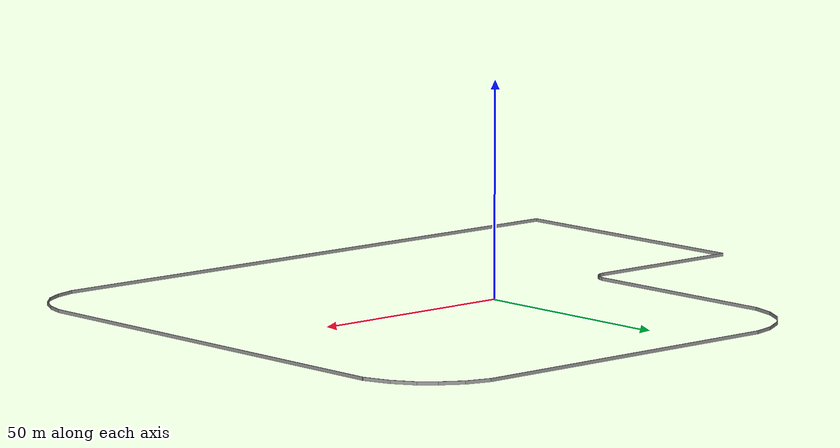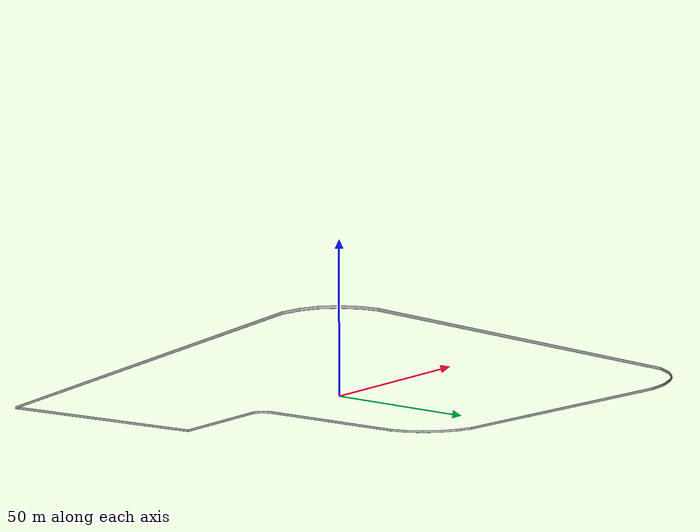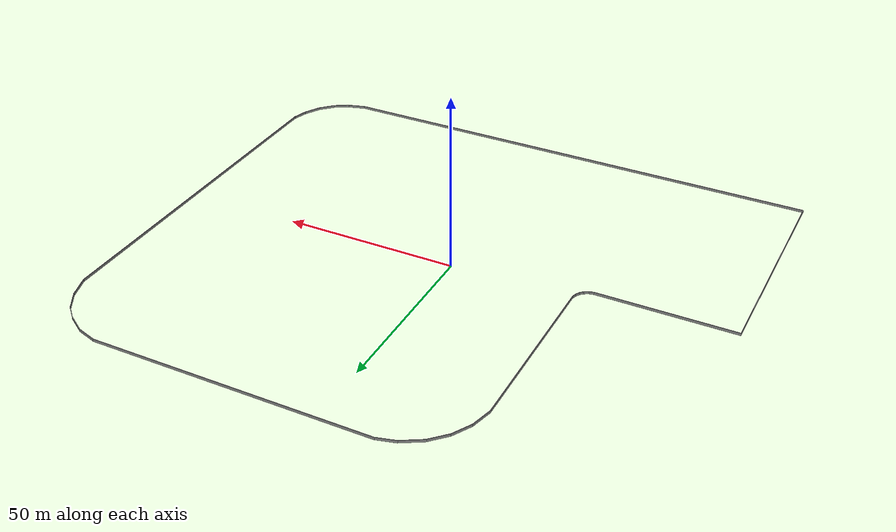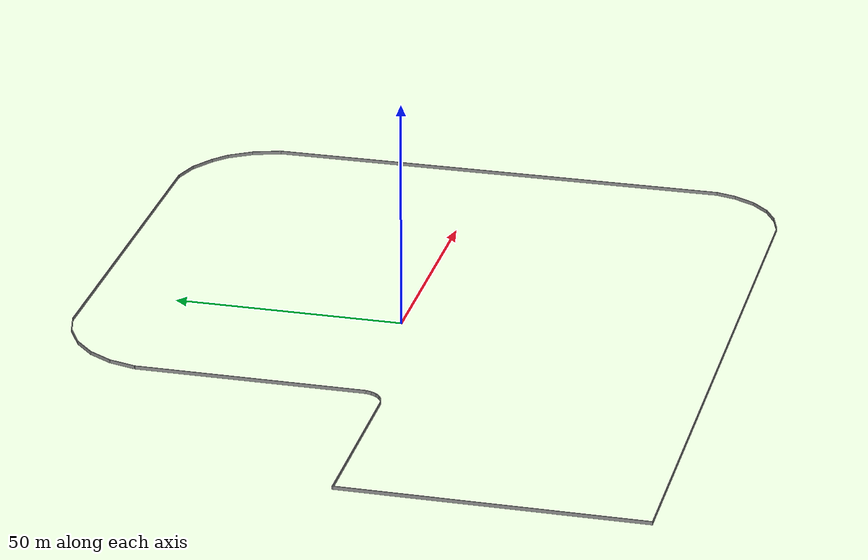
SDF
<?xml version='1.0'?>
<sdf version='1.6'>
  <model name='Bariyerler'>
    <pose frame=''>2.777 -0.475586 0 0 -0 0</pose>
    <link name='Wall_0'>
      <collision name='Wall_0_Collision'>
        <geometry>
          <box>
            <size>64.303 0.15 0.75</size>
          </box>
        </geometry>
        <pose frame=''>0 0 0.375 0 -0 0</pose>
      </collision>
      <visual name='Wall_0_Visual'>
        <pose frame=''>0 0 0.375 0 -0 0</pose>
        <geometry>
          <box>
            <size>64.303 0.15 0.75</size>
          </box>
        </geometry>
        <material>
          <script>
            <uri>file://media/materials/scripts/gazebo.material</uri>
            <name>Gazebo/Grey</name>
          </script>
          <ambient>1 1 1 1</ambient>
        </material>
      </visual>
      <pose frame=''>-80.332 -36.7419 0 0 0 -1.5708</pose>
    </link>
    <link name='Wall_1'>
      <collision name='Wall_1_Collision'>
        <geometry>
          <box>
            <size>144.25 0.15 0.75</size>
          </box>
        </geometry>
        <pose frame=''>0 0 0.375 0 -0 0</pose>
      </collision>
      <visual name='Wall_1_Visual'>
        <pose frame=''>0 0 0.375 0 -0 0</pose>
        <geometry>
          <box>
            <size>144.25 0.15 0.75</size>
          </box>
        </geometry>
        <material>
          <script>
            <uri>file://media/materials/scripts/gazebo.material</uri>
            <name>Gazebo/Grey</name>
          </script>
          <ambient>1 1 1 1</ambient>
        </material>
      </visual>
      <pose frame=''>-8.282 -68.8184 0 0 -0 0</pose>
    </link>
    <link name='Wall_16'>
      <collision name='Wall_16_Collision'>
        <geometry>
          <box>
            <size>4.64075 0.15 0.75</size>
          </box>
        </geometry>
        <pose frame=''>0 0 0.375 0 -0 0</pose>
      </collision>
      <visual name='Wall_16_Visual'>
        <pose frame=''>0 0 0.375 0 -0 0</pose>
        <geometry>
          <box>
            <size>4.64075 0.15 0.75</size>
          </box>
        </geometry>
        <material>
          <script>
            <uri>file://media/materials/scripts/gazebo.material</uri>
            <name>Gazebo/Grey</name>
          </script>
          <ambient>1 1 1 1</ambient>
        </material>
      </visual>
      <pose frame=''>79.711 -54.5909 0 0 -0 1.29843</pose>
    </link>
    <link name='Wall_17'>
      <collision name='Wall_17_Collision'>
        <geometry>
          <box>
            <size>102.507 0.15 0.75</size>
          </box>
        </geometry>
        <pose frame=''>0 0 0.375 0 -0 0</pose>
      </collision>
      <visual name='Wall_17_Visual'>
        <pose frame=''>0 0 0.375 0 -0 0</pose>
        <geometry>
          <box>
            <size>102.507 0.15 0.75</size>
          </box>
        </geometry>
        <material>
          <script>
            <uri>file://media/materials/scripts/gazebo.material</uri>
            <name>Gazebo/Grey</name>
          </script>
          <ambient>1 1 1 1</ambient>
        </material>
      </visual>
      <pose frame=''>80.3035 -1.24991 0 0 -0 1.57102</pose>
    </link>
    <link name='Wall_18'>
      <collision name='Wall_18_Collision'>
        <geometry>
          <box>
            <size>6.72502 0.15 0.75</size>
          </box>
        </geometry>
        <pose frame=''>0 0 0.375 0 -0 0</pose>
      </collision>
      <visual name='Wall_18_Visual'>
        <pose frame=''>0 0 0.375 0 -0 0</pose>
        <geometry>
          <box>
            <size>6.72502 0.15 0.75</size>
          </box>
        </geometry>
        <material>
          <script>
            <uri>file://media/materials/scripts/gazebo.material</uri>
            <name>Gazebo/Grey</name>
          </script>
          <ambient>1 1 1 1</ambient>
        </material>
      </visual>
      <pose frame=''>79.2684 53.0527 0 0 -0 1.88741</pose>
    </link>
    <link name='Wall_21'>
      <collision name='Wall_21_Collision'>
        <geometry>
          <box>
            <size>5.88855 0.15 0.75</size>
          </box>
        </geometry>
        <pose frame=''>0 0 0.375 0 -0 0</pose>
      </collision>
      <visual name='Wall_21_Visual'>
        <pose frame=''>0 0 0.375 0 -0 0</pose>
        <geometry>
          <box>
            <size>5.88855 0.15 0.75</size>
          </box>
        </geometry>
        <material>
          <script>
            <uri>file://media/materials/scripts/gazebo.material</uri>
            <name>Gazebo/Grey</name>
          </script>
          <ambient>1 1 1 1</ambient>
        </material>
      </visual>
      <pose frame=''>76.6817 58.6087 0 0 -0 2.13022</pose>
    </link>
    <link name='Wall_22'>
      <collision name='Wall_22_Collision'>
        <geometry>
          <box>
            <size>4.63008 0.15 0.75</size>
          </box>
        </geometry>
        <pose frame=''>0 0 0.375 0 -0 0</pose>
      </collision>
      <visual name='Wall_22_Visual'>
        <pose frame=''>0 0 0.375 0 -0 0</pose>
        <geometry>
          <box>
            <size>4.63008 0.15 0.75</size>
          </box>
        </geometry>
        <material>
          <script>
            <uri>file://media/materials/scripts/gazebo.material</uri>
            <name>Gazebo/Grey</name>
          </script>
          <ambient>1 1 1 1</ambient>
        </material>
      </visual>
      <pose frame=''>73.5057 62.552 0 0 -0 2.401</pose>
    </link>
    <link name='Wall_23'>
      <collision name='Wall_23_Collision'>
        <geometry>
          <box>
            <size>5.97946 0.15 0.75</size>
          </box>
        </geometry>
        <pose frame=''>0 0 0.375 0 -0 0</pose>
      </collision>
      <visual name='Wall_23_Visual'>
        <pose frame=''>0 0 0.375 0 -0 0</pose>
        <geometry>
          <box>
            <size>5.97946 0.15 0.75</size>
          </box>
        </geometry>
        <material>
          <script>
            <uri>file://media/materials/scripts/gazebo.material</uri>
            <name>Gazebo/Grey</name>
          </script>
          <ambient>1 1 1 1</ambient>
        </material>
      </visual>
      <pose frame=''>69.3394 65.6069 0 0 -0 2.58352</pose>
    </link>
    <link name='Wall_24'>
      <collision name='Wall_24_Collision'>
        <geometry>
          <box>
            <size>6.1221 0.15 0.75</size>
          </box>
        </geometry>
        <pose frame=''>0 0 0.375 0 -0 0</pose>
      </collision>
      <visual name='Wall_24_Visual'>
        <pose frame=''>0 0 0.375 0 -0 0</pose>
        <geometry>
          <box>
            <size>6.1221 0.15 0.75</size>
          </box>
        </geometry>
        <material>
          <script>
            <uri>file://media/materials/scripts/gazebo.material</uri>
            <name>Gazebo/Grey</name>
          </script>
          <ambient>1 1 1 1</ambient>
        </material>
      </visual>
      <pose frame=''>64.0402 67.9845 0 0 -0 2.8585</pose>
    </link>
    <link name='Wall_25'>
      <collision name='Wall_25_Collision'>
        <geometry>
          <box>
            <size>79.25 0.15 0.75</size>
          </box>
        </geometry>
        <pose frame=''>0 0 0.375 0 -0 0</pose>
      </collision>
      <visual name='Wall_25_Visual'>
        <pose frame=''>0 0 0.375 0 -0 0</pose>
        <geometry>
          <box>
            <size>79.25 0.15 0.75</size>
          </box>
        </geometry>
        <material>
          <script>
            <uri>file://media/materials/scripts/gazebo.material</uri>
            <name>Gazebo/Grey</name>
          </script>
          <ambient>1 1 1 1</ambient>
        </material>
      </visual>
      <pose frame=''>21.623 68.8186 0 0 -0 3.14159</pose>
    </link>
    <link name='Wall_26'>
      <collision name='Wall_26_Collision'>
        <geometry>
          <box>
            <size>5.5 0.15 0.75</size>
          </box>
        </geometry>
        <pose frame=''>0 0 0.375 0 -0 0</pose>
      </collision>
      <visual name='Wall_26_Visual'>
        <pose frame=''>0 0 0.375 0 -0 0</pose>
        <geometry>
          <box>
            <size>5.5 0.15 0.75</size>
          </box>
        </geometry>
        <material>
          <script>
            <uri>file://media/materials/scripts/gazebo.material</uri>
            <name>Gazebo/Grey</name>
          </script>
          <ambient>1 1 1 1</ambient>
        </material>
      </visual>
      <pose frame=''>-20.511 68.1261 0 0 0 -2.87975</pose>
    </link>
    <link name='Wall_27'>
      <collision name='Wall_27_Collision'>
        <geometry>
          <box>
            <size>6.5 0.15 0.75</size>
          </box>
        </geometry>
        <pose frame=''>0 0 0.375 0 -0 0</pose>
      </collision>
      <visual name='Wall_27_Visual'>
        <pose frame=''>0 0 0.375 0 -0 0</pose>
        <geometry>
          <box>
            <size>6.5 0.15 0.75</size>
          </box>
        </geometry>
        <material>
          <script>
            <uri>file://media/materials/scripts/gazebo.material</uri>
            <name>Gazebo/Grey</name>
          </script>
          <ambient>1 1 1 1</ambient>
        </material>
      </visual>
      <pose frame=''>-25.8445 65.8461 0 0 0 -2.61797</pose>
    </link>
    <link name='Wall_28'>
      <collision name='Wall_28_Collision'>
        <geometry>
          <box>
            <size>6 0.15 0.75</size>
          </box>
        </geometry>
        <pose frame=''>0 0 0.375 0 -0 0</pose>
      </collision>
      <visual name='Wall_28_Visual'>
        <pose frame=''>0 0 0.375 0 -0 0</pose>
        <geometry>
          <box>
            <size>6 0.15 0.75</size>
          </box>
        </geometry>
        <material>
          <script>
            <uri>file://media/materials/scripts/gazebo.material</uri>
            <name>Gazebo/Grey</name>
          </script>
          <ambient>1 1 1 1</ambient>
        </material>
      </visual>
      <pose frame=''>-30.662 62.1901 0 0 0 -2.35607</pose>
    </link>
    <link name='Wall_29'>
      <collision name='Wall_29_Collision'>
        <geometry>
          <box>
            <size>6 0.15 0.75</size>
          </box>
        </geometry>
        <pose frame=''>0 0 0.375 0 -0 0</pose>
      </collision>
      <visual name='Wall_29_Visual'>
        <pose frame=''>0 0 0.375 0 -0 0</pose>
        <geometry>
          <box>
            <size>6 0.15 0.75</size>
          </box>
        </geometry>
        <material>
          <script>
            <uri>file://media/materials/scripts/gazebo.material</uri>
            <name>Gazebo/Grey</name>
          </script>
          <ambient>1 1 1 1</ambient>
        </material>
      </visual>
      <pose frame=''>-34.1925 57.5886 0 0 0 -2.09442</pose>
    </link>
    <link name='Wall_30'>
      <collision name='Wall_30_Collision'>
        <geometry>
          <box>
            <size>6.25 0.15 0.75</size>
          </box>
        </geometry>
        <pose frame=''>0 0 0.375 0 -0 0</pose>
      </collision>
      <visual name='Wall_30_Visual'>
        <pose frame=''>0 0 0.375 0 -0 0</pose>
        <geometry>
          <box>
            <size>6.25 0.15 0.75</size>
          </box>
        </geometry>
        <material>
          <script>
            <uri>file://media/materials/scripts/gazebo.material</uri>
            <name>Gazebo/Grey</name>
          </script>
          <ambient>1 1 1 1</ambient>
        </material>
      </visual>
      <pose frame=''>-36.4445 52.1096 0 0 0 -1.83263</pose>
    </link>
    <link name='Wall_31'>
      <collision name='Wall_31_Collision'>
        <geometry>
          <box>
            <size>49.75 0.15 0.75</size>
          </box>
        </geometry>
        <pose frame=''>0 0 0.375 0 -0 0</pose>
      </collision>
      <visual name='Wall_31_Visual'>
        <pose frame=''>0 0 0.375 0 -0 0</pose>
        <geometry>
          <box>
            <size>49.75 0.15 0.75</size>
          </box>
        </geometry>
        <material>
          <script>
            <uri>file://media/materials/scripts/gazebo.material</uri>
            <name>Gazebo/Grey</name>
          </script>
          <ambient>1 1 1 1</ambient>
        </material>
      </visual>
      <pose frame=''>-37.234 24.3636 0 0 0 -1.5708</pose>
    </link>
    <link name='Wall_32'>
      <collision name='Wall_32_Collision'>
        <geometry>
          <box>
            <size>1.5 0.15 0.75</size>
          </box>
        </geometry>
        <pose frame=''>0 0 0.375 0 -0 0</pose>
      </collision>
      <visual name='Wall_32_Visual'>
        <pose frame=''>0 0 0.375 0 -0 0</pose>
        <geometry>
          <box>
            <size>1.5 0.15 0.75</size>
          </box>
        </geometry>
        <material>
          <script>
            <uri>file://media/materials/scripts/gazebo.material</uri>
            <name>Gazebo/Grey</name>
          </script>
          <ambient>1 1 1 1</ambient>
        </material>
      </visual>
      <pose frame=''>-37.409 -1.08841 0 0 0 -1.83302</pose>
    </link>
    <link name='Wall_33'>
      <collision name='Wall_33_Collision'>
        <geometry>
          <box>
            <size>1.5 0.15 0.75</size>
          </box>
        </geometry>
        <pose frame=''>0 0 0.375 0 -0 0</pose>
      </collision>
      <visual name='Wall_33_Visual'>
        <pose frame=''>0 0 0.375 0 -0 0</pose>
        <geometry>
          <box>
            <size>1.5 0.15 0.75</size>
          </box>
        </geometry>
        <material>
          <script>
            <uri>file://media/materials/scripts/gazebo.material</uri>
            <name>Gazebo/Grey</name>
          </script>
          <ambient>1 1 1 1</ambient>
        </material>
      </visual>
      <pose frame=''>-37.9215 -2.32491 0 0 0 -2.09444</pose>
    </link>
    <link name='Wall_34'>
      <collision name='Wall_34_Collision'>
        <geometry>
          <box>
            <size>1.25 0.15 0.75</size>
          </box>
        </geometry>
        <pose frame=''>0 0 0.375 0 -0 0</pose>
      </collision>
      <visual name='Wall_34_Visual'>
        <pose frame=''>0 0 0.375 0 -0 0</pose>
        <geometry>
          <box>
            <size>1.25 0.15 0.75</size>
          </box>
        </geometry>
        <material>
          <script>
            <uri>file://media/materials/scripts/gazebo.material</uri>
            <name>Gazebo/Grey</name>
          </script>
          <ambient>1 1 1 1</ambient>
        </material>
      </visual>
      <pose frame=''>-38.6475 -3.29841 0 0 0 -2.35555</pose>
    </link>
    <link name='Wall_35'>
      <collision name='Wall_35_Collision'>
        <geometry>
          <box>
            <size>1.5 0.15 0.75</size>
          </box>
        </geometry>
        <pose frame=''>0 0 0.375 0 -0 0</pose>
      </collision>
      <visual name='Wall_35_Visual'>
        <pose frame=''>0 0 0.375 0 -0 0</pose>
        <geometry>
          <box>
            <size>1.5 0.15 0.75</size>
          </box>
        </geometry>
        <material>
          <script>
            <uri>file://media/materials/scripts/gazebo.material</uri>
            <name>Gazebo/Grey</name>
          </script>
          <ambient>1 1 1 1</ambient>
        </material>
      </visual>
      <pose frame=''>-39.621 -4.02491 0 0 0 -2.61831</pose>
    </link>
    <link name='Wall_38'>
      <collision name='Wall_38_Collision'>
        <geometry>
          <box>
            <size>1.48874 0.15 0.75</size>
          </box>
        </geometry>
        <pose frame=''>0 0 0.375 0 -0 0</pose>
      </collision>
      <visual name='Wall_38_Visual'>
        <pose frame=''>0 0 0.375 0 -0 0</pose>
        <geometry>
          <box>
            <size>1.48874 0.15 0.75</size>
          </box>
        </geometry>
        <material>
          <script>
            <uri>file://media/materials/scripts/gazebo.material</uri>
            <name>Gazebo/Grey</name>
          </script>
          <ambient>1 1 1 1</ambient>
        </material>
      </visual>
      <pose frame=''>-40.858 -4.51391 0 0 0 -2.91328</pose>
    </link>
    <link name='Wall_41'>
      <collision name='Wall_41_Collision'>
        <geometry>
          <box>
            <size>38.9729 0.15 0.75</size>
          </box>
        </geometry>
        <pose frame=''>0 0 0.375 0 -0 0</pose>
      </collision>
      <visual name='Wall_41_Visual'>
        <pose frame=''>0 0 0.375 0 -0 0</pose>
        <geometry>
          <box>
            <size>38.9729 0.15 0.75</size>
          </box>
        </geometry>
        <material>
          <script>
            <uri>file://media/materials/scripts/gazebo.material</uri>
            <name>Gazebo/Grey</name>
          </script>
          <ambient>1 1 1 1</ambient>
        </material>
      </visual>
      <pose frame=''>-60.921 -4.66541 0 0 -0 3.14159</pose>
    </link>
    <link name='Wall_5'>
      <collision name='Wall_5_Collision'>
        <geometry>
          <box>
            <size>5.42578 0.15 0.75</size>
          </box>
        </geometry>
        <pose frame=''>0 0 0.375 0 -0 0</pose>
      </collision>
      <visual name='Wall_5_Visual'>
        <pose frame=''>0 0 0.375 0 -0 0</pose>
        <geometry>
          <box>
            <size>5.42578 0.15 0.75</size>
          </box>
        </geometry>
        <material>
          <script>
            <uri>file://media/materials/scripts/gazebo.material</uri>
            <name>Gazebo/Grey</name>
          </script>
          <ambient>1 1 1 1</ambient>
        </material>
      </visual>
      <pose frame=''>66.2985 -68.0734 0 0 -0 0.286319</pose>
    </link>
    <link name='Wall_6'>
      <collision name='Wall_6_Collision'>
        <geometry>
          <box>
            <size>4.87271 0.15 0.75</size>
          </box>
        </geometry>
        <pose frame=''>0 0 0.375 0 -0 0</pose>
      </collision>
      <visual name='Wall_6_Visual'>
        <pose frame=''>0 0 0.375 0 -0 0</pose>
        <geometry>
          <box>
            <size>4.87271 0.15 0.75</size>
          </box>
        </geometry>
        <material>
          <script>
            <uri>file://media/materials/scripts/gazebo.material</uri>
            <name>Gazebo/Grey</name>
          </script>
          <ambient>1 1 1 1</ambient>
        </material>
      </visual>
      <pose frame=''>70.891 -66.1779 0 0 -0 0.508929</pose>
    </link>
    <link name='Wall_7'>
      <collision name='Wall_7_Collision'>
        <geometry>
          <box>
            <size>5.27446 0.15 0.75</size>
          </box>
        </geometry>
        <pose frame=''>0 0 0.375 0 -0 0</pose>
      </collision>
      <visual name='Wall_7_Visual'>
        <pose frame=''>0 0 0.375 0 -0 0</pose>
        <geometry>
          <box>
            <size>5.27446 0.15 0.75</size>
          </box>
        </geometry>
        <material>
          <script>
            <uri>file://media/materials/scripts/gazebo.material</uri>
            <name>Gazebo/Grey</name>
          </script>
          <ambient>1 1 1 1</ambient>
        </material>
      </visual>
      <pose frame=''>74.756 -63.2069 0 0 -0 0.790228</pose>
    </link>
    <link name='Wall_8'>
      <collision name='Wall_8_Collision'>
        <geometry>
          <box>
            <size>5.43776 0.15 0.75</size>
          </box>
        </geometry>
        <pose frame=''>0 0 0.375 0 -0 0</pose>
      </collision>
      <visual name='Wall_8_Visual'>
        <pose frame=''>0 0 0.375 0 -0 0</pose>
        <geometry>
          <box>
            <size>5.43776 0.15 0.75</size>
          </box>
        </geometry>
        <material>
          <script>
            <uri>file://media/materials/scripts/gazebo.material</uri>
            <name>Gazebo/Grey</name>
          </script>
          <ambient>1 1 1 1</ambient>
        </material>
      </visual>
      <pose frame=''>77.833 -59.0699 0 0 -0 1.06798</pose>
    </link>
    <static>1</static>
  </model>
</sdf>
